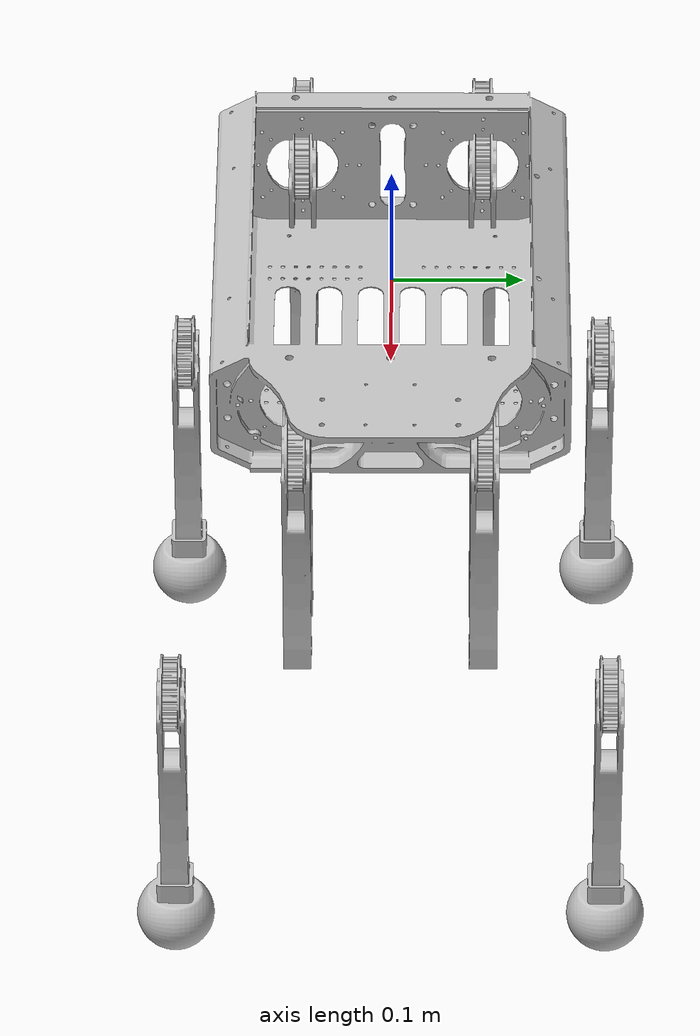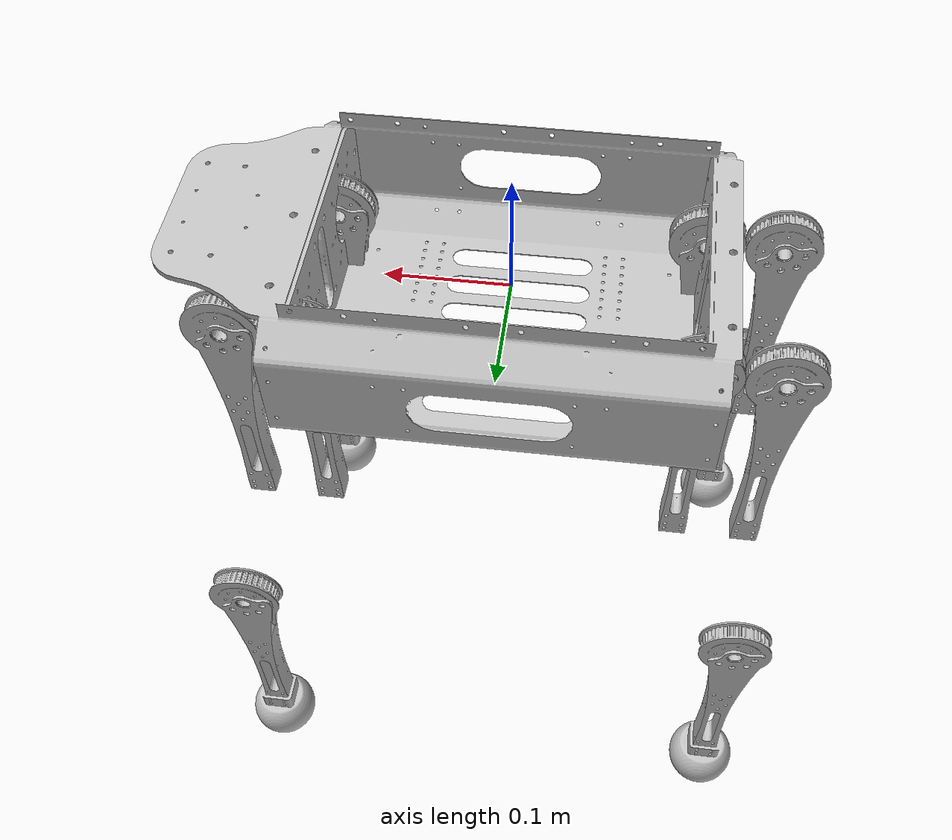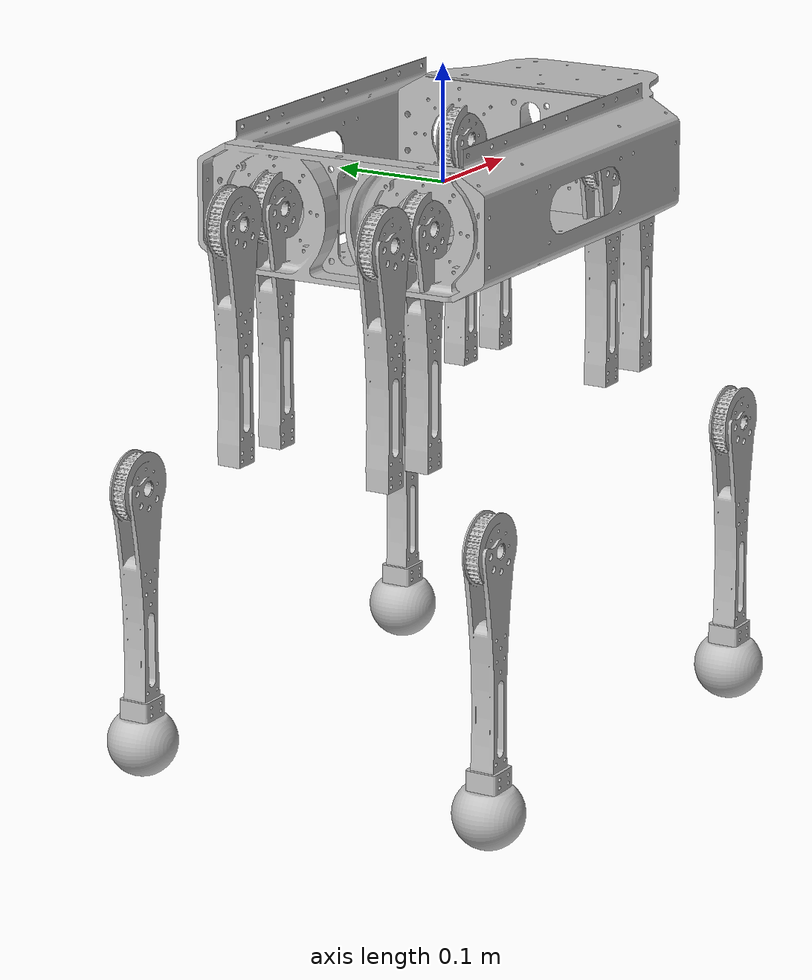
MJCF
<mujoco model="new_dog">
  <!-- blanceinertia = "true"  -->
  <compiler angle="radian" meshdir="../meshes/" autolimits = "true"  />
  <!-- 决定了椭圆摩擦锥的摩擦与法线约束阻抗的比率 -->
  <option
    gravity = "0 0 -9.81"
    cone="elliptic"
    impratio="100"
  />

  <default>
    <default class="new_dog">
      <geom friction="0.4" margin="0.001" condim="1"/>
      <joint axis="0 1 0" damping="0.1" armature="0.01" frictionloss="0.2"/>
      <motor ctrlrange="-23.7 23.7"/>
      <default class="abduction">
        <joint axis="1 0 0" range="-1.0472 1.0472"/>
      </default>
      <default class="hip">
        <default class="front_hip"> <joint range="-1.5708 3.4907"/> </default>
        <default class="back_hip" > <joint range="-0.5236 4.5379"/> </default>
      </default>
      <default class="knee">
        <joint range="-2.7227 -0.83776"/>
        <motor ctrlrange="-45.43 45.43"/>
      </default>
      <default class="visual">
        <geom type="mesh" contype="0" conaffinity="0" group="2"/>
      </default>
      <!--  几何体尺寸     相对于父刚体的位置       接触优先级    接触条件维度  滑动摩擦，扭转摩擦，滚动摩擦-->
      <default class="collision">
        <geom group="3"/>
        <default class="foot">
          <geom size="0.03" pos="0 0 -0.22" priority="1" condim="6" friction="0.4 0.02 0.01"/>
        </default>
      </default>
    </default>
  </default>

  <asset>
    <material name="metal" rgba=".9 .95 .95 1" />
    <material name="black" rgba="0 0 0 1" />
    <material name="white" rgba="1 1 1 1" />
    <material name="gray" rgba="0.671705 0.692426 0.774270 1" />

    <mesh name="base_link" file="base_link.STL"/>
    <mesh name="leg1_link1" file="leg1_link1.STL"/>
    <mesh name="leg1_link2" file="leg1_link2.STL"/>
    <mesh name="leg1_link3" file="leg1_link3.STL"/>
    <mesh name="leg1_link4" file="leg1_link4.STL"/>
    <mesh name="leg2_link1" file="leg2_link1.STL"/>
    <mesh name="leg2_link2" file="leg2_link2.STL"/>
    <mesh name="leg2_link3" file="leg2_link3.STL"/>
    <mesh name="leg2_link4" file="leg2_link4.STL"/>
    <mesh name="leg3_link1" file="leg3_link1.STL"/>
    <mesh name="leg3_link2" file="leg3_link2.STL"/>
    <mesh name="leg3_link3" file="leg3_link3.STL"/>
    <mesh name="leg3_link4" file="leg3_link4.STL"/>
    <mesh name="leg4_link1" file="leg4_link1.STL"/>
    <mesh name="leg4_link2" file="leg4_link2.STL"/>
    <mesh name="leg4_link3" file="leg4_link3.STL"/>
    <mesh name="leg4_link4" file="leg4_link4.STL"/>
  </asset>

  <worldbody>
    <geom type="mesh" rgba="0.75294 0.75294 0.75294 1" mesh="base_link"/>
    <body name="leg1_link1" pos="0.15 -0.069866 0.00048158">
      <inertial pos="0 0 0" quat="0.538559 0.538559 0.458208 0.458208" mass="1.0316" diaginertia="0.00244868 0.0024 0.000551317"/>
      <joint name="leg1_joint1" pos="0 0 0" axis="1 0 0" range="-3.1415 3.1415" actuatorfrcrange="-19.94 19.94"/>
      <geom type="mesh" rgba="0.75294 0.75294 0.75294 1" mesh="leg1_link1"/>
      <body name="leg1_link2" pos="0.061332 -0.0002687 -0.00048158">
        <inertial pos="0 0 0" quat="0.989215 0.146472 0 0" mass="0.75" diaginertia="0.0031 0.00301194 0.000488057"/>
        <joint name="leg1_joint2" pos="0 0 0" axis="0 1 0" range="-3.1415 3.1415" actuatorfrcrange="-19.94 19.94"/>
        <geom type="mesh" rgba="0.75294 0.75294 0.75294 1" mesh="leg1_link2"/>
        <body name="leg1_link3" pos="0 -0.096681 -0.23497">
          <inertial pos="-7.22642e-05 0 -0.0811437" quat="1 0 0.000445285 0" mass="0.3048" diaginertia="0.0035294 0.0034994 6e-05"/>
          <joint name="leg1_joint3" pos="0 0 0" axis="0 1 0" range="-3.1415 3.1415" actuatorfrcrange="-19.94 19.94"/>
          <geom type="mesh" rgba="0.75294 0.75294 0.75294 1" mesh="leg1_link3"/>
          <geom pos="-0.00019719 0 -0.22142" type="mesh" rgba="0.75294 0.75294 0.75294 1" mesh="leg1_link4"/>
        </body>
      </body>
    </body>
    <body name="leg2_link1" pos="0.15 0.070134 0.00048158">
      <inertial pos="0 0 0" quat="0.458208 0.458208 0.538559 0.538559" mass="1.0316" diaginertia="0.00244868 0.0024 0.000551317"/>
      <joint name="leg2_joint1" pos="0 0 0" axis="1 0 0" range="-3.1415 3.1415" actuatorfrcrange="-19.94 19.94"/>
      <geom type="mesh" rgba="0.75294 0.75294 0.75294 1" mesh="leg2_link1"/>
      <body name="leg2_link2" pos="0.061332 0 0">
        <inertial pos="0 0 0" quat="0.987425 -0.158091 0 0" mass="0.75" diaginertia="0.003 0.00293004 0.000569958"/>
        <joint name="leg2_joint2" pos="0 0 0" axis="0 1 0" range="-3.1415 3.1415" actuatorfrcrange="-19.94 19.94"/>
        <geom type="mesh" rgba="0.75294 0.75294 0.75294 1" mesh="leg2_link2"/>
        <body name="leg2_link3" pos="0 0.096681 -0.23546">
          <inertial pos="-7.22642e-05 0 -0.0811437" quat="1 0 0.000445285 0" mass="0.3048" diaginertia="0.0035294 0.0034994 6e-05"/>
          <joint name="leg2_joint3" pos="0 0 0" axis="0 1 0" range="-3.1415 3.1415" actuatorfrcrange="-19.94 19.94"/>
          <geom type="mesh" rgba="0.75294 0.75294 0.75294 1" mesh="leg2_link3"/>
          <geom pos="-0.00019719 0 -0.22142" type="mesh" rgba="0.75294 0.75294 0.75294 1" mesh="leg2_link4"/>
        </body>
      </body>
    </body>
    <body name="leg3_link1" pos="-0.15 -0.06981 0.00034723">
      <inertial pos="0 0 0" quat="0.458208 0.458208 0.538559 0.538559" mass="1.0316" diaginertia="0.00244868 0.0024 0.000551317"/>
      <joint name="leg3_joint1" pos="0 0 0" axis="1 0 0" range="-3.1415 3.1415" actuatorfrcrange="-19.94 19.94"/>
      <geom type="mesh" rgba="0.75294 0.75294 0.75294 1" mesh="leg3_link1"/>
      <body name="leg3_link2" pos="-0.061332 -0.00032435 -0.00034723">
        <inertial pos="0 0 0" quat="0.989215 0.146472 0 0" mass="0.75" diaginertia="0.0031 0.00301194 0.000488057"/>
        <joint name="leg3_joint2" pos="0 0 0" axis="0 1 0" range="-3.1415 3.1415" actuatorfrcrange="-19.94 19.94"/>
        <geom type="mesh" rgba="0.75294 0.75294 0.75294 1" mesh="leg3_link2"/>
        <body name="leg3_link3" pos="0 -0.096681 -0.23497">
          <inertial pos="7.22642e-05 0 -0.0811437" quat="1 0 -0.000445285 0" mass="0.3048" diaginertia="0.0035294 0.0034994 6e-05"/>
          <joint name="leg3_joint3" pos="0 0 0" axis="0 1 0" range="-3.1415 3.1415" actuatorfrcrange="-19.94 19.94"/>
          <geom type="mesh" rgba="0.75294 0.75294 0.75294 1" mesh="leg3_link3"/>
          <geom pos="0.00019719 0 -0.22142" type="mesh" rgba="0.75294 0.75294 0.75294 1" mesh="leg3_link4"/>
        </body>
      </body>
    </body>
    <body name="leg4_link1" pos="-0.15 0.07019 0.00034723">
      <inertial pos="0 0 0" quat="0.538559 0.538559 0.458208 0.458208" mass="1.0316" diaginertia="0.00244868 0.0024 0.000551317"/>
      <joint name="leg4_joint1" pos="0 0 0" axis="1 0 0" range="-3.1415 3.1415" actuatorfrcrange="-19.94 19.94"/>
      <geom type="mesh" rgba="0.75294 0.75294 0.75294 1" mesh="leg4_link1"/>
      <body name="leg4_link2" pos="-0.061332 -5.5649e-05 -0.00034723">
        <inertial pos="0 0 0" quat="0.989215 -0.146472 0 0" mass="0.75" diaginertia="0.0031 0.00301194 0.000488057"/>
        <joint name="leg4_joint2" pos="0 0 0" axis="0 1 0" range="-3.1415 3.1415" actuatorfrcrange="-19.94 19.94"/>
        <geom type="mesh" rgba="0.75294 0.75294 0.75294 1" mesh="leg4_link2"/>
        <body name="leg4_link3" pos="0 0.096681 -0.23497">
          <inertial pos="7.22642e-05 0 -0.0811437" quat="1 0 -0.000445285 0" mass="0.3048" diaginertia="0.0035294 0.0034994 6e-05"/>
          <joint name="leg4_joint3" pos="0 0 0" axis="0 1 0" range="-3.1415 3.1415" actuatorfrcrange="-19.94 19.94"/>
          <geom type="mesh" rgba="0.75294 0.75294 0.75294 1" mesh="leg4_link3"/>
          <geom pos="0.00019719 0 -0.22142" type="mesh" rgba="0.75294 0.75294 0.75294 1" mesh="leg4_link4"/>
        </body>
      </body>
    </body>
  </worldbody>

     <actuator>
        <motor name="leg1_1"  joint="leg1_1_joint" />
        <motor name="leg1_2"  joint="leg1_2_joint" />
        <motor name="leg1_3"  joint="leg1_3_joint" />
        <motor name="leg2_1"  joint="leg2_1_joint" />
        <motor name="leg2_2"  joint="leg2_2_joint" />
        <motor name="leg2_3"  joint="leg2_3_joint" />
        <motor name="leg3_1"  joint="leg3_1_joint" />
        <motor name="leg3_2"  joint="leg3_2_joint" />
        <motor name="leg3_3"  joint="leg3_3_joint" />
        <motor name="leg4_1"  joint="leg4_1_joint" />
        <motor name="leg4_2"  joint="leg4_2_joint" />
        <motor name="leg4_3"  joint="leg4_3_joint" />
    </actuator>

  <sensor>
    <jointpos name="leg1_1_p"  joint="leg1_1_joint" />
    <jointpos name="leg1_2_p"  joint="leg1_2_joint" />
    <jointpos name="leg1_3_p"  joint="leg1_3_joint" />
    <jointpos name="leg2_1_p"  joint="leg2_1_joint" />
    <jointpos name="leg2_2_p"  joint="leg2_2_joint" />
    <jointpos name="leg2_3_p"  joint="leg2_3_joint" />
    <jointpos name="leg3_1_p"  joint="leg3_1_joint" />
    <jointpos name="leg3_2_p"  joint="leg3_2_joint" />
    <jointpos name="leg3_3_p"  joint="leg3_3_joint" />
    <jointpos name="leg4_1_p"  joint="leg4_1_joint" />
    <jointpos name="leg4_2_p"  joint="leg4_2_joint" />
    <jointpos name="leg4_3_p"  joint="leg4_3_joint" />

    <jointvel name="leg1_1_v"  joint="leg1_1_joint" />
    <jointvel name="leg1_2_v"  joint="leg1_2_joint" />
    <jointvel name="leg1_3_v"  joint="leg1_3_joint" />
    <jointvel name="leg2_1_v"  joint="leg2_1_joint" />
    <jointvel name="leg2_2_v"  joint="leg2_2_joint" />
    <jointvel name="leg2_3_v"  joint="leg2_3_joint" />
    <jointvel name="leg3_1_v"  joint="leg3_1_joint" />
    <jointvel name="leg3_2_v"  joint="leg3_2_joint" />
    <jointvel name="leg3_3_v"  joint="leg3_3_joint" />
    <jointvel name="leg4_1_v"  joint="leg4_1_joint" />
    <jointvel name="leg4_2_v"  joint="leg4_2_joint" />
    <jointvel name="leg4_3_v"  joint="leg4_3_joint" />

    <jointvel name="leg1_1_t"  joint="leg1_1_joint" noise="0.01" />
    <jointvel name="leg1_2_t"  joint="leg1_2_joint" noise="0.01" />
    <jointvel name="leg1_3_t"  joint="leg1_3_joint" noise="0.01" />
    <jointvel name="leg2_1_t"  joint="leg2_1_joint" noise="0.01" />
    <jointvel name="leg2_2_t"  joint="leg2_2_joint" noise="0.01" />
    <jointvel name="leg2_3_t"  joint="leg2_3_joint" noise="0.01" />
    <jointvel name="leg3_1_t"  joint="leg3_1_joint" noise="0.01" />
    <jointvel name="leg3_2_t"  joint="leg3_2_joint" noise="0.01" />
    <jointvel name="leg3_3_t"  joint="leg3_3_joint" noise="0.01" />
    <jointvel name="leg4_1_t"  joint="leg4_1_joint" noise="0.01" />
    <jointvel name="leg4_2_t"  joint="leg4_2_joint" noise="0.01" />
    <jointvel name="leg4_3_t"  joint="leg4_3_joint" noise="0.01" />

    <framequat      name="imu_quat" objtype="site" objname="imu" />
    <gyro           name="imu_gyro" site="imu" />
    <accelerometer  name="imu_acc"  site="imu" />

    <framepos    name="frame_pos" objtype="site" objname="imu" />
    <framelinvel name="frame_vel" objtype="site" objname="imu" />
  </sensor>

  <keyframe>
    <key name="home"
      qpos="0 0 0.05
            1 0 0 0
            0 2.7 -2.53
            0 2.7 -2.53
            0 2.7 -2.53
            0 2.7 -2.53 "
      ctrl="0 2.7 -2.53
            0 2.7 -2.53
            0 2.7 -2.53
            0 2.7 -2.53 " />
  </keyframe>

</mujoco>
